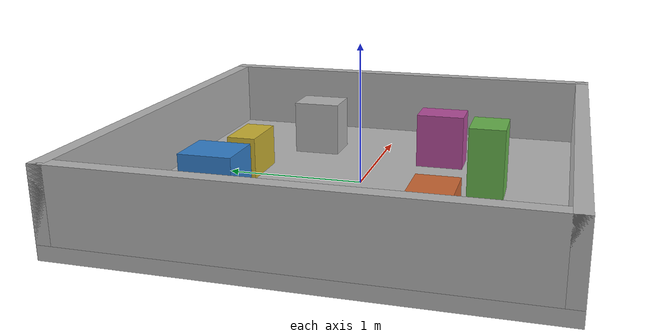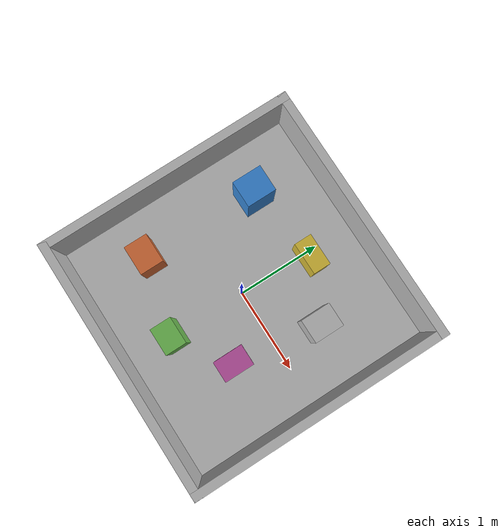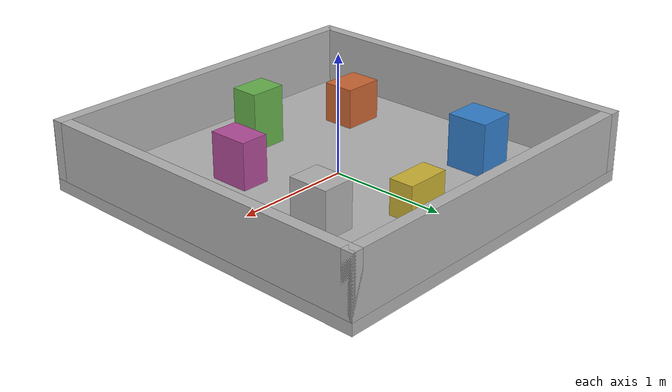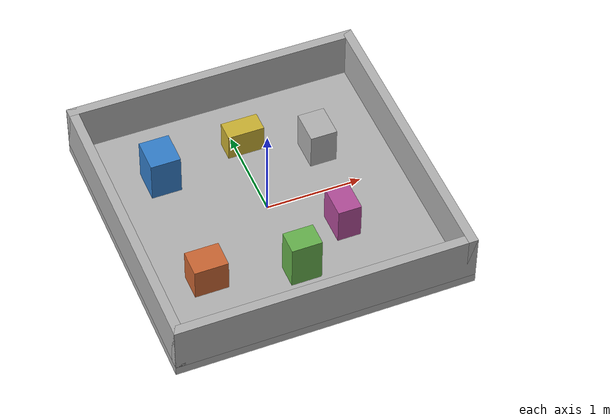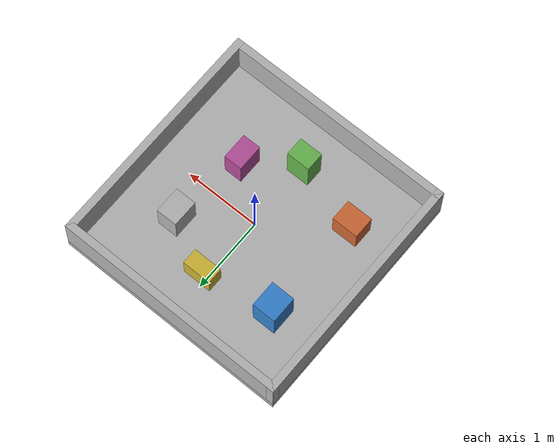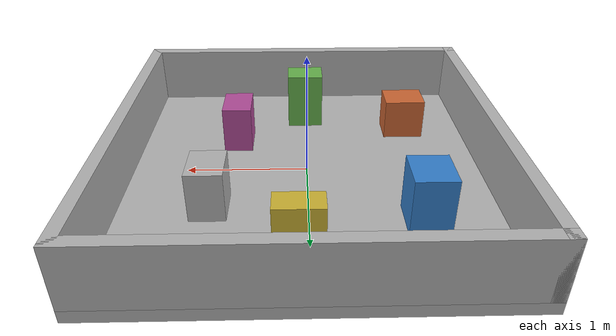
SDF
<?xml version="1.0"?>
<sdf version="1.9"><world name="test_room">
  <physics name="physics" type="ignored"><max_step_size>0.001</max_step_size><real_time_factor>1</real_time_factor></physics>
  <gravity>0 0 -9.81</gravity>
  <plugin filename="gz-sim-physics-system" name="gz::sim::systems::Physics"/>
  <plugin filename="gz-sim-user-commands-system" name="gz::sim::systems::UserCommands"/>
  <plugin filename="gz-sim-scene-broadcaster-system" name="gz::sim::systems::SceneBroadcaster"/>
  <plugin filename="gz-sim-sensors-system" name="gz::sim::systems::Sensors"><render_engine>ogre2</render_engine></plugin>
  <light name="sun" type="directional">
    <pose>0 0 10 0 0 0</pose><direction>-0.5 0.1 -0.9</direction>
    <diffuse>0.9 0.9 0.9 1</diffuse><specular>0.2 0.2 0.2 1</specular><cast_shadows>true</cast_shadows>
  </light>
  <model name="floor"><static>true</static><pose>0 0 -0.05 0 0 0</pose><link name="body">
    <collision name="collision"><geometry><box><size>3.1 3.1 0.1</size></box></geometry></collision>
    <visual name="visual"><geometry><box><size>3.1 3.1 0.1</size></box></geometry>
      <material><ambient>0.6 0.6 0.6 1</ambient><diffuse>0.7 0.7 0.7 1</diffuse></material>
    </visual></link></model>
  <model name="north"><static>true</static><pose>0 1.5 0.25 0 0 0</pose><link name="body">
    <collision name="collision"><geometry><box><size>3.1 0.1 0.5</size></box></geometry></collision>
    <visual name="visual"><geometry><box><size>3.1 0.1 0.5</size></box></geometry>
      <material><ambient>0.6 0.6 0.6 1</ambient><diffuse>0.7 0.7 0.7 1</diffuse></material>
    </visual></link></model>
  <model name="south"><static>true</static><pose>0 -1.5 0.25 0 0 0</pose><link name="body">
    <collision name="collision"><geometry><box><size>3.1 0.1 0.5</size></box></geometry></collision>
    <visual name="visual"><geometry><box><size>3.1 0.1 0.5</size></box></geometry>
      <material><ambient>0.6 0.6 0.6 1</ambient><diffuse>0.7 0.7 0.7 1</diffuse></material>
    </visual></link></model>
  <model name="east"><static>true</static><pose>1.5 0 0.25 0 0 0</pose><link name="body">
    <collision name="collision"><geometry><box><size>0.1 3.1 0.5</size></box></geometry></collision>
    <visual name="visual"><geometry><box><size>0.1 3.1 0.5</size></box></geometry>
      <material><ambient>0.6 0.6 0.6 1</ambient><diffuse>0.7 0.7 0.7 1</diffuse></material>
    </visual></link></model>
  <model name="west"><static>true</static><pose>-1.5 0 0.25 0 0 0</pose><link name="body">
    <collision name="collision"><geometry><box><size>0.1 3.1 0.5</size></box></geometry></collision>
    <visual name="visual"><geometry><box><size>0.1 3.1 0.5</size></box></geometry>
      <material><ambient>0.6 0.6 0.6 1</ambient><diffuse>0.7 0.7 0.7 1</diffuse></material>
    </visual></link></model>
  <model name="obstacle"><static>true</static><pose>0.75 0.525 0.2 0 0 0</pose><link name="body">
    <collision name="collision"><geometry><box><size>0.28 0.35 0.4</size></box></geometry></collision>
    <visual name="visual"><geometry><box><size>0.28 0.35 0.4</size></box></geometry>
      <material><ambient>0.6 0.6 0.6 1</ambient><diffuse>0.7 0.7 0.7 1</diffuse></material>
    </visual></link></model>
  <model name="box_northwest"><static>true</static><pose>-0.8625 0.7125 0.225 0 0 0</pose><link name="body">
    <collision name="collision"><geometry><box><size>0.315 0.35 0.45</size></box></geometry></collision>
    <visual name="visual"><geometry><box><size>0.315 0.35 0.45</size></box></geometry>
      <material><ambient>0.2 0.5 0.8 1</ambient><diffuse>0.2 0.5 0.8 1</diffuse></material>
    </visual></link></model>
  <model name="box_southwest"><static>true</static><pose>-0.9 -0.675 0.175 0 0 0</pose><link name="body">
    <collision name="collision"><geometry><box><size>0.35 0.28 0.35</size></box></geometry></collision>
    <visual name="visual"><geometry><box><size>0.35 0.28 0.35</size></box></geometry>
      <material><ambient>0.8 0.4 0.2 1</ambient><diffuse>0.8 0.4 0.2 1</diffuse></material>
    </visual></link></model>
  <model name="box_south"><static>true</static><pose>0 -0.9 0.25 0 0 0</pose><link name="body">
    <collision name="collision"><geometry><box><size>0.315 0.245 0.5</size></box></geometry></collision>
    <visual name="visual"><geometry><box><size>0.315 0.245 0.5</size></box></geometry>
      <material><ambient>0.4 0.7 0.3 1</ambient><diffuse>0.4 0.7 0.3 1</diffuse></material>
    </visual></link></model>
  <model name="box_southeast"><static>true</static><pose>0.6 -0.4875 0.2 0 0 0</pose><link name="body">
    <collision name="collision"><geometry><box><size>0.245 0.35 0.4</size></box></geometry></collision>
    <visual name="visual"><geometry><box><size>0.245 0.35 0.4</size></box></geometry>
      <material><ambient>0.7 0.3 0.6 1</ambient><diffuse>0.7 0.3 0.6 1</diffuse></material>
    </visual></link></model>
  <model name="box_north"><static>true</static><pose>0.075 0.8625 0.15 0 0 0</pose><link name="body">
    <collision name="collision"><geometry><box><size>0.385 0.21 0.3</size></box></geometry></collision>
    <visual name="visual"><geometry><box><size>0.385 0.21 0.3</size></box></geometry>
      <material><ambient>0.8 0.7 0.2 1</ambient><diffuse>0.8 0.7 0.2 1</diffuse></material>
    </visual></link></model>
</world></sdf>
